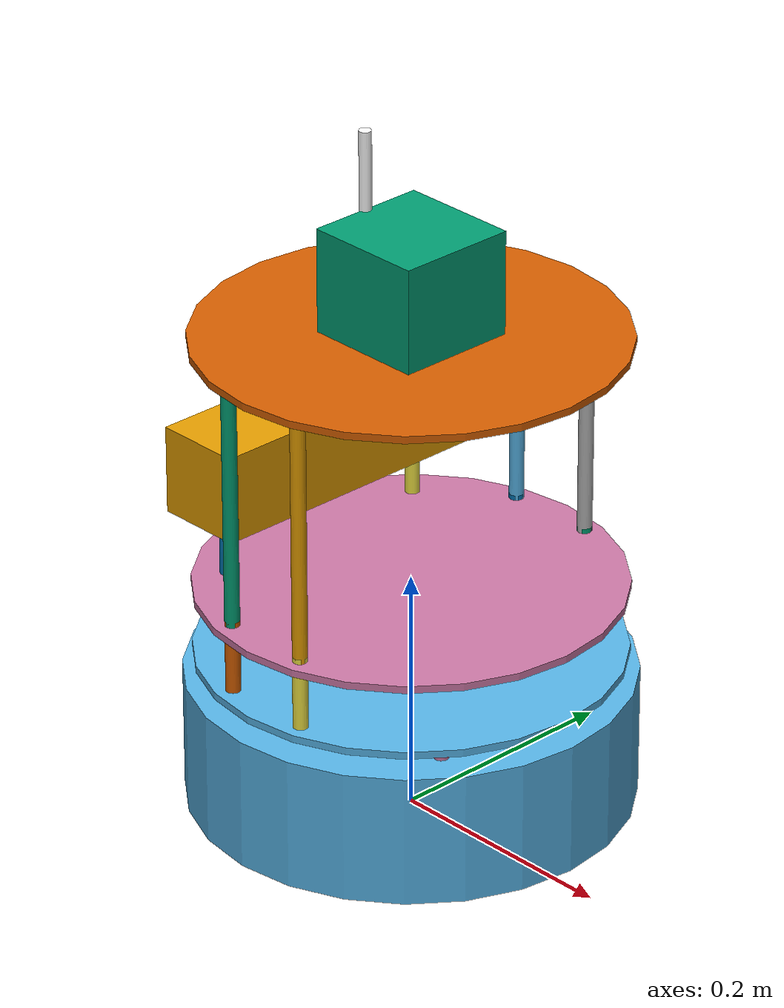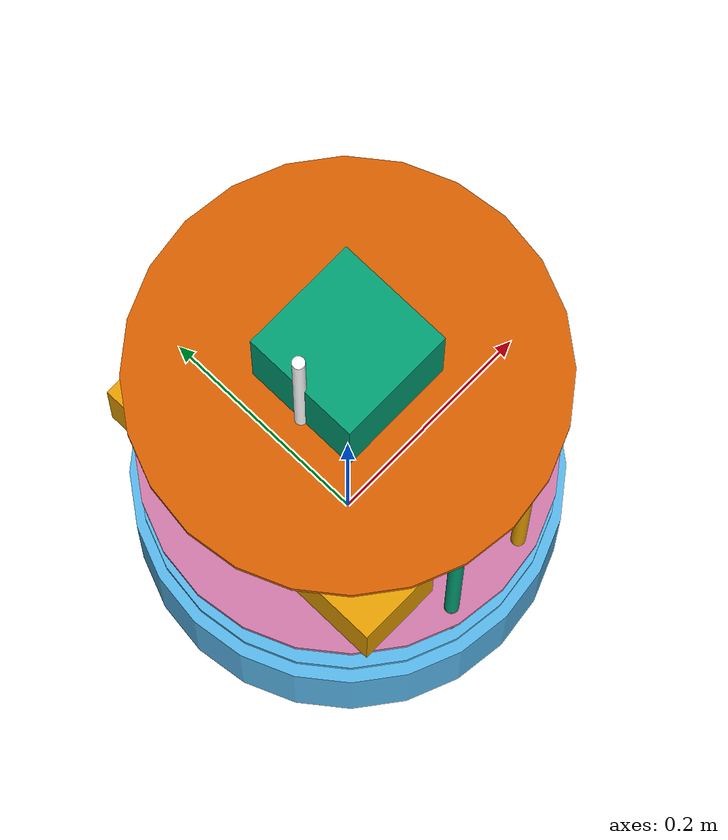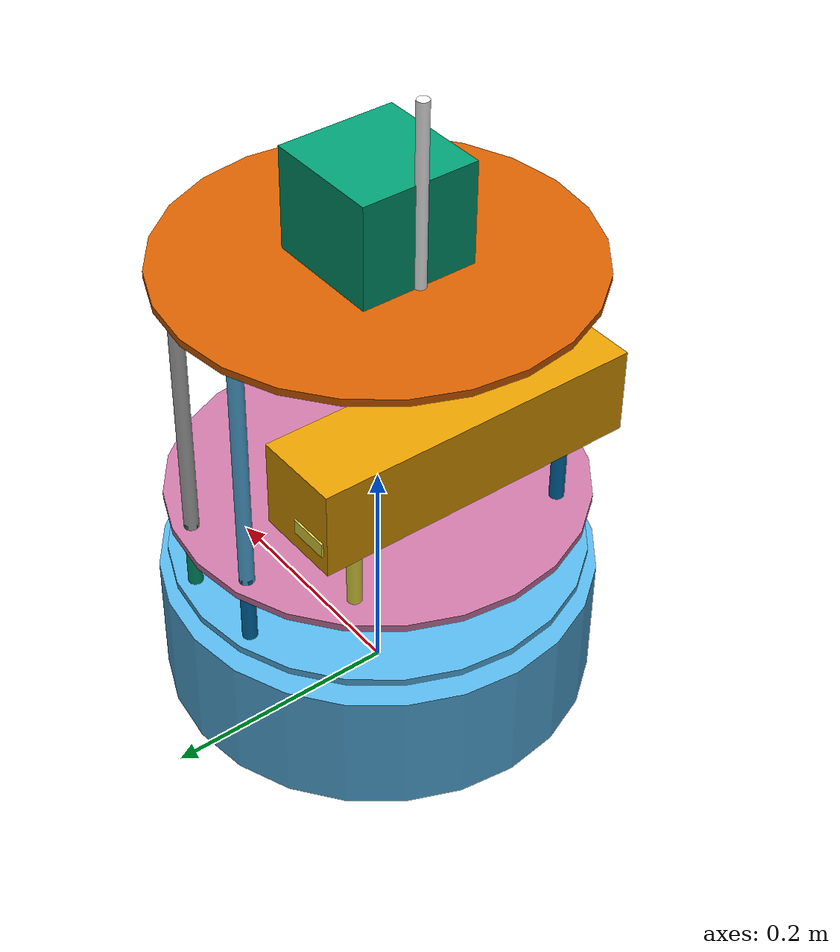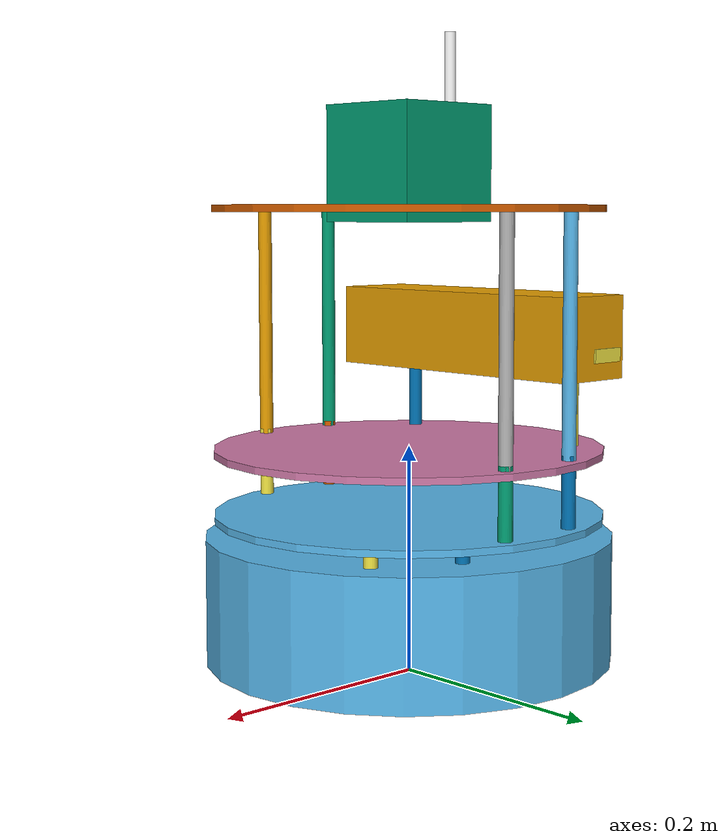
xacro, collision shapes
<?xml version="1.0" encoding="UTF-8"?>
<!-- |    This document was autogenerated by xacro from xacro from /home/simulations/public_sim_ws/src/all/  | -->
<!-- |    turtlebot/turtlebot_description/robots/kobuki_hexagons_asus_xtion_pro.urdf.xacro | -->
<!-- |    EDITING THIS FILE BY HAND IS NOT RECOMMENDED                                 | -->
<!--
    - Base      : kobuki
    - Stacks    : hexagons
    - 3d Sensor : kinect
-->

<robot xmlns:xacro="http://ros.org/wiki/xacro" name="turtlebot">
<xacro:arg name="diff_drive_publishTf" default="true" />
<xacro:arg name="diff_drive_publishOdomTF" default="true" />
<xacro:arg name="pkg_containing_meshes" default="kobuki_description" />

  <!-- General -->
  <!--
    These properties must be observed by any machine
    that wants to be defined as a turtlebot. Refer
    to the REP for more details.

    http://www.ros.org/reps/rep-0119.html
   -->
  <!-- Kobuki -->
  <!-- Xacro properties -->
  <!-- Xacro macros -->
  <!-- Pole macros -->
  <!-- Microsoft Kinect / ASUS Xtion PRO Live for simulation -->
  <!--
    These properties must be observed by any machine
    that wants to be defined as a turtlebot. Refer
    to the REP for more details.

    http://www.ros.org/reps/rep-0119.html
   -->
   <link name="base_footprint" />
   <joint name="base_joint" type="fixed">
      <origin rpy="0 0 0" xyz="0 0 0.0102" />
      <parent link="base_footprint" />
      <child link="base_link" />
   </joint>
   <link name="base_link">
      <visual>
         <geometry>
            <!-- new mesh -->
            <mesh filename="package://$(arg pkg_containing_meshes)/meshes/main_body.dae" />
         </geometry>
         <origin rpy="0 0 0" xyz="0.001 0 0.05199" />
      </visual>
      <collision>
         <geometry>
            <cylinder length="0.10938" radius="0.178" />
         </geometry>
         <origin rpy="0 0 0" xyz="0.0 0 0.05949" />
      </collision>
      <inertial>
         <!-- COM experimentally determined -->
         <origin xyz="0.01 0 0" />
         <mass value="2.4" />
      <!-- 2.4/2.6 kg for small/big battery pack -->
         <inertia ixx="0.019995" ixy="0.0" ixz="0.0" iyy="0.019995" iyz="0.0" izz="0.03675" />
      </inertial>
   </link>
   <joint name="wheel_left_joint" type="continuous">
      <parent link="base_link" />
      <child link="wheel_left_link" />
      <origin rpy="-1.57079632679 0 0" xyz="0.00 0.115 0.0250" />
      <axis xyz="0 0 1" />
   </joint>
   <link name="wheel_left_link">
      <visual>
         <geometry>
            <mesh filename="package://$(arg pkg_containing_meshes)/meshes/wheel.dae" />
         </geometry>
         <origin rpy="0 0 0" xyz="0 0 0" />
      </visual>
      <collision>
         <geometry>
            <cylinder length="0.0206" radius="0.0350" />
         </geometry>
         <origin rpy="0 0 0" xyz="0 0 0" />
      </collision>
      <inertial>
         <mass value="0.01" />
         <origin xyz="0 0 0" />
         <inertia ixx="0.001" ixy="0.0" ixz="0.0" iyy="0.001" iyz="0.0" izz="0.001" />
      </inertial>
   </link>
   <joint name="wheel_right_joint" type="continuous">
      <parent link="base_link" />
      <child link="wheel_right_link" />
      <origin rpy="-1.57079632679 0 0" xyz="0.00 -0.115 0.0250" />
      <axis xyz="0 0 1" />
   </joint>
   <link name="wheel_right_link">
      <visual>
         <geometry>
            <mesh filename="package://$(arg pkg_containing_meshes)/meshes/wheel.dae" />
         </geometry>
         <origin rpy="0 0 0" xyz="0 0 0" />
      </visual>
      <collision>
         <geometry>
            <cylinder length="0.0206" radius="0.0350" />
         </geometry>
         <origin rpy="0 0 0" xyz="0 0 0" />
      </collision>
      <inertial>
         <mass value="0.01" />
         <origin xyz="0 0 0" />
         <inertia ixx="0.001" ixy="0.0" ixz="0.0" iyy="0.001" iyz="0.0" izz="0.001" />
      </inertial>
   </link>
   <joint name="caster_front_joint" type="fixed">
      <parent link="base_link" />
      <child link="caster_front_link" />
      <origin rpy="-1.57079632679 0 0" xyz="0.115 0.0 0.007" />
   </joint>
   <link name="caster_front_link">
      <collision>
         <geometry>
            <cylinder length="0.0176" radius="0.017" />
         </geometry>
         <origin rpy="0 0 0" xyz="0 0 0" />
      </collision>
      <inertial>
         <mass value="0.01" />
         <origin xyz="0 0 0" />
         <inertia ixx="0.001" ixy="0.0" ixz="0.0" iyy="0.001" iyz="0.0" izz="0.001" />
      </inertial>
   </link>
   <joint name="caster_back_joint" type="fixed">
      <parent link="base_link" />
      <child link="caster_back_link" />
      <origin rpy="-1.57079632679 0 0" xyz="-0.135 0.0 0.009" />
   </joint>
   <link name="caster_back_link">
      <collision>
         <geometry>
            <cylinder length="0.0176" radius="0.017" />
         </geometry>
         <origin rpy="0 0 0" xyz="0 0 0" />
      </collision>
      <inertial>
         <mass value="0.01" />
         <origin xyz="0 0 0" />
         <inertia ixx="0.001" ixy="0.0" ixz="0.0" iyy="0.001" iyz="0.0" izz="0.001" />
      </inertial>
   </link>
   <!-- Kobuki's sensors -->
   <joint name="gyro_joint" type="fixed">
      <axis xyz="0 1 0" />
      <origin rpy="0 0 0" xyz="0.056 0.062 0.0202" />
      <parent link="base_link" />
      <child link="gyro_link" />
   </joint>
   <link name="gyro_link">
      <inertial>
         <mass value="0.001" />
         <origin rpy="0 0 0" xyz="0 0 0" />
         <inertia ixx="0.0001" ixy="0" ixz="0" iyy="0.000001" iyz="0" izz="0.0001" />
      </inertial>
   </link>
   <joint name="cliff_sensor_left_joint" type="fixed">
      <origin rpy="0 1.57079632679 0" xyz="0.08734 0.13601 0.0214" />
      <parent link="base_link" />
      <child link="cliff_sensor_left_link" />
   </joint>
   <link name="cliff_sensor_left_link">
      <inertial>
         <mass value="0.0001" />
         <origin xyz="0 0 0" />
         <inertia ixx="0.0001" ixy="0.0" ixz="0.0" iyy="0.0001" iyz="0.0" izz="0.0001" />
      </inertial>
   </link>
   <joint name="cliff_sensor_right_joint" type="fixed">
      <origin rpy="0 1.57079632679 0" xyz="0.085 -0.13601 0.0214" />
      <parent link="base_link" />
      <child link="cliff_sensor_right_link" />
   </joint>
   <link name="cliff_sensor_right_link">
      <inertial>
         <mass value="0.0001" />
         <origin xyz="0 0 0" />
         <inertia ixx="0.0001" ixy="0.0" ixz="0.0" iyy="0.0001" iyz="0.0" izz="0.0001" />
      </inertial>
   </link>
   <joint name="cliff_sensor_front_joint" type="fixed">
      <origin rpy="0 1.57079632679 0" xyz="0.156 0.00 0.0214" />
      <parent link="base_link" />
      <child link="cliff_sensor_front_link" />
   </joint>
   <link name="cliff_sensor_front_link">
      <inertial>
         <mass value="0.0001" />
         <origin xyz="0 0 0" />
         <inertia ixx="0.0001" ixy="0.0" ixz="0.0" iyy="0.0001" iyz="0.0" izz="0.0001" />
      </inertial>
   </link>
   <joint name="laser_sensor_joint" type="fixed">
      <origin rpy="0 0 0" xyz="0.0 0.0 0.435" />
      <parent link="base_link" />
      <child link="laser_sensor_link" />
   </joint>
   <link name="laser_sensor_link">
      <inertial>
         <mass value="1e-5" />
         <origin rpy="0 0 0" xyz="0 0 0" />
         <inertia ixx="1e-6" ixy="0" ixz="0" iyy="1e-6" iyz="0" izz="1e-6" />
      </inertial>
      <collision>
         <origin rpy="0 0 0" xyz="0 0 0" />
         <geometry>
            <box size="0.1 0.1 0.1" />
         </geometry>
      </collision>
      <visual>
         <origin rpy="0 0 0" xyz="0 0 0" />
         <geometry>
            <mesh filename="package://$(arg pkg_containing_meshes)/meshes/hokuyo.dae" />
         </geometry>
      </visual>
   </link>
   <gazebo reference="wheel_left_link">
      <mu1>1.0</mu1>
      <mu2>1.0</mu2>
      <kp>1000000.0</kp>
      <kd>100.0</kd>
      <minDepth>0.001</minDepth>
      <maxVel>1.0</maxVel>
   </gazebo>
   <gazebo reference="wheel_right_link">
      <mu1>1.0</mu1>
      <mu2>1.0</mu2>
      <kp>1000000.0</kp>
      <kd>100.0</kd>
      <minDepth>0.001</minDepth>
      <maxVel>1.0</maxVel>
   </gazebo>
   <gazebo reference="caster_front_link">
      <mu1>0.0</mu1>
      <mu2>0.0</mu2>
      <kp>1000000.0</kp>
      <kd>100.0</kd>
      <minDepth>0.001</minDepth>
      <maxVel>1.0</maxVel>
   </gazebo>
   <gazebo reference="caster_back_link">
      <mu1>0.0</mu1>
      <mu2>0.0</mu2>
      <kp>1000000.0</kp>
      <kd>100.0</kd>
      <minDepth>0.001</minDepth>
      <maxVel>1.0</maxVel>
   </gazebo>
   <gazebo reference="base_link">
      <mu1>0.3</mu1>
      <mu2>0.3</mu2>
      <sensor name="bumpers" type="contact">
         <always_on>1</always_on>
         <update_rate>50.0</update_rate>
         <visualize>true</visualize>
         <contact>
            <collision>base_footprint_collision_base_link</collision>
         </contact>
      </sensor>
   </gazebo>
   <gazebo reference="cliff_sensor_left_link">
      <sensor name="cliff_sensor_left" type="ray">
         <always_on>true</always_on>
         <update_rate>50</update_rate>
         <visualize>true</visualize>
         <ray>
            <scan>
               <horizontal>
                  <samples>50</samples>
                  <resolution>1.0</resolution>
                  <min_angle>-0.0436</min_angle>
                  <!-- -2.5 degree -->
                  <max_angle>0.0436</max_angle>
                  <!-- 2.5 degree -->
               </horizontal>
          <!--            Can't use vertical rays until this bug is resolved: -->
          <!--            https://bitbucket.org/osrf/gazebo/issue/509/vertical-sensor-doesnt-works -->
            </scan>
            <range>
               <min>0.01</min>
               <max>0.15</max>
               <resolution>1.0</resolution>
            </range>
         </ray>
      </sensor>
   </gazebo>
   <gazebo reference="cliff_sensor_right_link">
      <sensor name="cliff_sensor_right" type="ray">
         <always_on>true</always_on>
         <update_rate>50</update_rate>
         <visualize>true</visualize>
         <ray>
            <scan>
               <horizontal>
                  <samples>50</samples>
                  <resolution>1.0</resolution>
                  <min_angle>-0.0436</min_angle>
                  <!-- -2.5 degree -->
                  <max_angle>0.0436</max_angle>
                  <!-- 2.5 degree -->
               </horizontal>
          <!--            Can't use vertical rays until this bug is resolved: -->
          <!--            https://bitbucket.org/osrf/gazebo/issue/509/vertical-sensor-doesnt-works -->
            </scan>
            <range>
               <min>0.01</min>
               <max>0.15</max>
               <resolution>1.0</resolution>
            </range>
         </ray>
      </sensor>
   </gazebo>
   <gazebo reference="cliff_sensor_front_link">
      <sensor name="cliff_sensor_front" type="ray">
         <always_on>true</always_on>
         <update_rate>50</update_rate>
         <visualize>true</visualize>
         <ray>
            <scan>
               <horizontal>
                  <samples>50</samples>
                  <resolution>1.0</resolution>
                  <min_angle>-0.0436</min_angle>
                  <!-- -2.5 degree -->
                  <max_angle>0.0436</max_angle>
                  <!-- 2.5 degree -->
               </horizontal>
          <!--            Can't use vertical rays until this bug is resolved: -->
          <!--            https://bitbucket.org/osrf/gazebo/issue/509/vertical-sensor-doesnt-works -->
            </scan>
            <range>
               <min>0.01</min>
               <max>0.15</max>
               <resolution>1.0</resolution>
            </range>
         </ray>
      </sensor>
   </gazebo>

  <gazebo>
    <plugin name="imu_controller" filename="libhector_gazebo_ros_imu.so">
      <robotNamespace>/</robotNamespace>
      <updateRate>50.0</updateRate>
      <bodyName>base_link</bodyName>
      <topicName>/mobile_base/sensors/imu_data_raw</topicName>
      <accelDrift>0.005 0.005 0.005</accelDrift>
      <accelGaussianNoise>0.005 0.005 0.005</accelGaussianNoise>
      <rateDrift>0.005 0.005 0.005 </rateDrift>
      <rateGaussianNoise>0.005 0.005 0.005 </rateGaussianNoise>
      <headingDrift>0.005</headingDrift>
      <headingGaussianNoise>0.005</headingGaussianNoise>
      <headingDriftFrequency>0.0</headingDriftFrequency>
      <headingOffset>0.0</headingOffset>
      <rateDriftFrequency>0 0 0</rateDriftFrequency>
      <rateOffset>0 0 0</rateOffset>
      <accelDriftFrequency>0 0 0</accelDriftFrequency>
      <accelOffset>0 0 0</accelOffset>
    </plugin>
  </gazebo>

   <gazebo>
      <plugin filename="libgazebo_ros_diff_drive.so" name="differential_drive_controller">
         <alwaysOn>true</alwaysOn>
         <updateRate>50</updateRate>
         <publishTf>$(arg diff_drive_publishTf)</publishTf>
         <leftJoint>wheel_left_joint</leftJoint>
         <rightJoint>wheel_right_joint</rightJoint>
         <wheelSeparation>.230</wheelSeparation>
         <wheelDiameter>0.070</wheelDiameter>
         <torque>5.0</torque>
         <commandTopic>/cmd_vel</commandTopic>
         <!-- getting data form 'encoder' integration or getting data form gazebo 'world' -->
         <odometrySource>world</odometrySource> <!-- 'encoder' instead of 'world' is also possible -->
         <odometryTopic>/odom</odometryTopic> <!-- relative/name ,  /global/name  -->
         <odometryFrame>/odom</odometryFrame>
         <robotBaseFrame>/base_footprint</robotBaseFrame>
         <publishOdomTF>$(arg diff_drive_publishOdomTF)</publishOdomTF><!-- If both this and publishTf are true, send robotBaseFrame-to-odometryFrame transforms -->
         <publishWheelJointState>true</publishWheelJointState>
        <!-- Set to true to publish transforms for the wheel links, defaults to false -->
         <publishWheelTF>false</publishWheelTF>
         <wheelAcceleration> 0 </wheelAcceleration>
         <wheelTorque> 5.0 </wheelTorque>
         <legacyMode>true</legacyMode>
         <rosDebugLevel> na </rosDebugLevel>
      </plugin>
   </gazebo>
   <gazebo reference="laser_sensor_link">
      <sensor name="laser_sensor" type="ray">

         <pose>0 0 0 0 0 0</pose>
         <visualize>false</visualize>
         <update_rate>20</update_rate> <!-- hz, default: 40 -->
         <ray>
            <scan>
               <horizontal>
                  <samples>3</samples> <!-- default: 720 -->
                  <!-- If RangeResolution is 1, the number of simulated rays is equal to the number of returned range readings (no interpolation) -->
                  <resolution>1</resolution>
                  <min_angle>-1.570796</min_angle> <!-- -90 deg -->
                  <max_angle>1.570796</max_angle> <!-- 90 deg -->
               </horizontal>
            </scan>
            <range>
               <min>0.10</min>
               <max>5.0</max> <!-- 5 meters range -->
               <resolution>0.01</resolution>
            </range>
            <noise>
               <type>gaussian</type>
               <mean>0.0</mean>
               <stddev>0.01</stddev>
            </noise>
         </ray>
        <plugin filename="libgazebo_ros_laser.so" name="gazebo_ros_hokuyo_controller">
            <topicName>/kobuki/laser/scan</topicName>
            <frameName>laser_sensor_link</frameName>
         </plugin>
      </sensor>
   </gazebo>
   <joint name="pole_bottom_0_joint" type="fixed">
      <origin rpy="0 0 0" xyz="0.12 0.082    0.1028" />
      <parent link="base_link" />
      <child link="pole_bottom_0_link" />
   </joint>
   <link name="pole_bottom_0_link">
      <visual>
         <origin rpy="0 0 0" xyz="0 0 0" />
         <geometry>
            <mesh filename="package://$(arg pkg_containing_meshes)/meshes/stacks/hexagons/pole_bottom.dae" />
         </geometry>
      </visual>
      <collision>
         <origin rpy="0 0 0" xyz="0 0 0" />
         <geometry>
            <cylinder length="0.0492" radius="0.006" />
         </geometry>
      </collision>
      <inertial>
         <mass value="0.008" />
         <origin rpy="0 0 0" xyz="0 0 0" />
         <inertia ixx="0.000001686" ixy="0.0" ixz="0.0" iyy="0.000001686" iyz="0.0" izz="0.000000144" />
      </inertial>
   </link>
   <joint name="pole_bottom_1_joint" type="fixed">
      <origin rpy="0 0 0" xyz="0.055 0.12 0.1028" />
      <parent link="base_link" />
      <child link="pole_bottom_1_link" />
   </joint>
   <link name="pole_bottom_1_link">
      <visual>
         <origin rpy="0 0 0" xyz="0 0 0" />
         <geometry>
            <mesh filename="package://$(arg pkg_containing_meshes)/meshes/stacks/hexagons/pole_bottom.dae" />
         </geometry>
      </visual>
      <collision>
         <origin rpy="0 0 0" xyz="0 0 0" />
         <geometry>
            <cylinder length="0.0492" radius="0.006" />
         </geometry>
      </collision>
      <inertial>
         <mass value="0.008" />
         <origin rpy="0 0 0" xyz="0 0 0" />
         <inertia ixx="0.000001686" ixy="0.0" ixz="0.0" iyy="0.000001686" iyz="0.0" izz="0.000000144" />
      </inertial>
   </link>
   <joint name="pole_bottom_2_joint" type="fixed">
      <origin rpy="0 0 0" xyz="-0.055 0.12 0.1028" />
      <parent link="base_link" />
      <child link="pole_bottom_2_link" />
   </joint>
   <link name="pole_bottom_2_link">
      <visual>
         <origin rpy="0 0 0" xyz="0 0 0" />
         <geometry>
            <mesh filename="package://$(arg pkg_containing_meshes)/meshes/stacks/hexagons/pole_bottom.dae" />
         </geometry>
      </visual>
      <collision>
         <origin rpy="0 0 0" xyz="0 0 0" />
         <geometry>
            <cylinder length="0.0492" radius="0.006" />
         </geometry>
      </collision>
      <inertial>
         <mass value="0.008" />
         <origin rpy="0 0 0" xyz="0 0 0" />
         <inertia ixx="0.000001686" ixy="0.0" ixz="0.0" iyy="0.000001686" iyz="0.0" izz="0.000000144" />
      </inertial>
   </link>
   <joint name="pole_bottom_3_joint" type="fixed">
      <origin rpy="0 0 0" xyz="0.12 -0.082 0.1028" />
      <parent link="base_link" />
      <child link="pole_bottom_3_link" />
   </joint>
   <link name="pole_bottom_3_link">
      <visual>
         <origin rpy="0 0 0" xyz="0 0 0" />
         <geometry>
            <mesh filename="package://$(arg pkg_containing_meshes)/meshes/stacks/hexagons/pole_bottom.dae" />
         </geometry>
      </visual>
      <collision>
         <origin rpy="0 0 0" xyz="0 0 0" />
         <geometry>
            <cylinder length="0.0492" radius="0.006" />
         </geometry>
      </collision>
      <inertial>
         <mass value="0.008" />
         <origin rpy="0 0 0" xyz="0 0 0" />
         <inertia ixx="0.000001686" ixy="0.0" ixz="0.0" iyy="0.000001686" iyz="0.0" izz="0.000000144" />
      </inertial>
   </link>
   <joint name="pole_bottom_4_joint" type="fixed">
      <origin rpy="0 0 0" xyz="0.055 -0.12 0.1028" />
      <parent link="base_link" />
      <child link="pole_bottom_4_link" />
   </joint>
   <link name="pole_bottom_4_link">
      <visual>
         <origin rpy="0 0 0" xyz="0 0 0" />
         <geometry>
            <mesh filename="package://$(arg pkg_containing_meshes)/meshes/stacks/hexagons/pole_bottom.dae" />
         </geometry>
      </visual>
      <collision>
         <origin rpy="0 0 0" xyz="0 0 0" />
         <geometry>
            <cylinder length="0.0492" radius="0.006" />
         </geometry>
      </collision>
      <inertial>
         <mass value="0.008" />
         <origin rpy="0 0 0" xyz="0 0 0" />
         <inertia ixx="0.000001686" ixy="0.0" ixz="0.0" iyy="0.000001686" iyz="0.0" izz="0.000000144" />
      </inertial>
   </link>
   <joint name="pole_bottom_5_joint" type="fixed">
      <origin rpy="0 0 0" xyz="-0.055 -0.12 0.1028" />
      <parent link="base_link" />
      <child link="pole_bottom_5_link" />
   </joint>
   <link name="pole_bottom_5_link">
      <visual>
         <origin rpy="0 0 0" xyz="0 0 0" />
         <geometry>
            <mesh filename="package://$(arg pkg_containing_meshes)/meshes/stacks/hexagons/pole_bottom.dae" />
         </geometry>
      </visual>
      <collision>
         <origin rpy="0 0 0" xyz="0 0 0" />
         <geometry>
            <cylinder length="0.0492" radius="0.006" />
         </geometry>
      </collision>
      <inertial>
         <mass value="0.008" />
         <origin rpy="0 0 0" xyz="0 0 0" />
         <inertia ixx="0.000001686" ixy="0.0" ixz="0.0" iyy="0.000001686" iyz="0.0" izz="0.000000144" />
      </inertial>
   </link>
   <joint name="plate_bottom_joint" type="fixed">
      <origin rpy="0 0 0" xyz="0.02364 0.0 0.1306" />
      <parent link="base_link" />
      <child link="plate_bottom_link" />
   </joint>
   <link name="plate_bottom_link">
      <visual>
         <origin rpy="0 0 0" xyz="0 0 0" />
         <geometry>
            <mesh filename="package://$(arg pkg_containing_meshes)/meshes/stacks/hexagons/plate_bottom.dae" />
         </geometry>
      </visual>
      <collision>
         <origin rpy="0 0 0" xyz="-0.02364 0 0" />
         <geometry>
            <cylinder length="0.006" radius="0.170" />
         </geometry>
      </collision>
      <inertial>
         <mass value="0.520" />
         <origin xyz="0 0 0" />
         <inertia ixx="0.003328" ixy="0.0" ixz="0.0" iyy="0.003328" iyz="0.0" izz="0.006656" />
      </inertial>
   </link>
   <joint name="pole_middle_0_joint" type="fixed">
      <origin rpy="0 0 0" xyz="0.0381 0.1505 0.164" />
      <parent link="base_link" />
      <child link="pole_middle_0_link" />
   </joint>
   <link name="pole_middle_0_link">
      <visual>
         <origin rpy="0 3.14159265359 0" xyz="0 0 0" />
         <geometry>
            <mesh filename="package://$(arg pkg_containing_meshes)/meshes/stacks/hexagons/pole_middle.dae" />
         </geometry>
      </visual>
      <collision>
         <origin rpy="0 0 0" xyz="0 0 0" />
         <geometry>
            <cylinder length="0.0608" radius="0.006" />
         </geometry>
      </collision>
      <inertial>
         <mass value="0.012" />
         <origin xyz="0 0 0" />
         <inertia ixx="0.000003805" ixy="0.0" ixz="0.0" iyy="0.000003805" iyz="0.0" izz="0.000000216" />
      </inertial>
   </link>
   <joint name="pole_middle_1_joint" type="fixed">
      <origin rpy="0 0 0" xyz="0.0381 -0.1505 0.164" />
      <parent link="base_link" />
      <child link="pole_middle_1_link" />
   </joint>
   <link name="pole_middle_1_link">
      <visual>
         <origin rpy="0 3.14159265359 0" xyz="0 0 0" />
         <geometry>
            <mesh filename="package://$(arg pkg_containing_meshes)/meshes/stacks/hexagons/pole_middle.dae" />
         </geometry>
      </visual>
      <collision>
         <origin rpy="0 0 0" xyz="0 0 0" />
         <geometry>
            <cylinder length="0.0608" radius="0.006" />
         </geometry>
      </collision>
      <inertial>
         <mass value="0.012" />
         <origin xyz="0 0 0" />
         <inertia ixx="0.000003805" ixy="0.0" ixz="0.0" iyy="0.000003805" iyz="0.0" izz="0.000000216" />
      </inertial>
   </link>
   <joint name="pole_middle_2_joint" type="fixed">
      <origin rpy="0 0 0" xyz="-0.0381 0.1505 0.164" />
      <parent link="base_link" />
      <child link="pole_middle_2_link" />
   </joint>
   <link name="pole_middle_2_link">
      <visual>
         <origin rpy="0 3.14159265359 0" xyz="0 0 0" />
         <geometry>
            <mesh filename="package://$(arg pkg_containing_meshes)/meshes/stacks/hexagons/pole_middle.dae" />
         </geometry>
      </visual>
      <collision>
         <origin rpy="0 0 0" xyz="0 0 0" />
         <geometry>
            <cylinder length="0.0608" radius="0.006" />
         </geometry>
      </collision>
      <inertial>
         <mass value="0.012" />
         <origin xyz="0 0 0" />
         <inertia ixx="0.000003805" ixy="0.0" ixz="0.0" iyy="0.000003805" iyz="0.0" izz="0.000000216" />
      </inertial>
   </link>
   <joint name="pole_middle_3_joint" type="fixed">
      <origin rpy="0 0 0" xyz="-0.0381 -0.1505 0.164" />
      <parent link="base_link" />
      <child link="pole_middle_3_link" />
   </joint>
   <link name="pole_middle_3_link">
      <visual>
         <origin rpy="0 3.14159265359 0" xyz="0 0 0" />
         <geometry>
            <mesh filename="package://$(arg pkg_containing_meshes)/meshes/stacks/hexagons/pole_middle.dae" />
         </geometry>
      </visual>
      <collision>
         <origin rpy="0 0 0" xyz="0 0 0" />
         <geometry>
            <cylinder length="0.0608" radius="0.006" />
         </geometry>
      </collision>
      <inertial>
         <mass value="0.012" />
         <origin xyz="0 0 0" />
         <inertia ixx="0.000003805" ixy="0.0" ixz="0.0" iyy="0.000003805" iyz="0.0" izz="0.000000216" />
      </inertial>
   </link>
   <joint name="plate_middle_joint" type="fixed">
      <origin rpy="0 0 0" xyz="-0.01364 0.0 0.1874" />
      <parent link="base_link" />
      <child link="plate_middle_link" />
   </joint>
   <link name="plate_middle_link">
      <visual>
         <origin rpy="0 0 0" xyz="0 0 0" />
         <geometry>
            <mesh filename="package://$(arg pkg_containing_meshes)/meshes/stacks/hexagons/plate_middle.dae" />
         </geometry>
      </visual>
      <collision>
         <origin rpy="0 0 0" xyz="0.01364 0.0 0.0" />
         <geometry>
            <cylinder length="0.006" radius="0.170" />
         </geometry>
      </collision>
      <inertial>
         <mass value="0.520" />
         <origin xyz="0 0 0" />
         <inertia ixx="0.003328" ixy="0.0" ixz="0.0" iyy="0.003328" iyz="0.0" izz="0.006656" />
      </inertial>
   </link>
   <joint name="pole_top_0_joint" type="fixed">
      <origin rpy="0 0 0" xyz="0.0381 0.1505 0.292" />
      <parent link="base_link" />
      <child link="pole_top_0_link" />
   </joint>
   <link name="pole_top_0_link">
      <visual>
         <origin rpy="0 0 0" xyz=" 0 0 0" />
         <geometry>
            <mesh filename="package://$(arg pkg_containing_meshes)/meshes/stacks/hexagons/pole_top.dae" />
         </geometry>
      </visual>
      <collision>
         <origin rpy="0 0 0" xyz="0 0 0" />
         <geometry>
            <cylinder length="0.2032" radius="0.006" />
         </geometry>
      </collision>
      <inertial>
         <mass value="0.060" />
         <origin xyz="0 0 0" />
         <inertia ixx="0.000206991" ixy="0.0" ixz="0.0" iyy="0.000206991" iyz="0.0" izz="0.000001080" />
      </inertial>
   </link>
   <joint name="pole_top_1_joint" type="fixed">
      <origin rpy="0 0 0" xyz="0.0381 -0.1505 0.292" />
      <parent link="base_link" />
      <child link="pole_top_1_link" />
   </joint>
   <link name="pole_top_1_link">
      <visual>
         <origin rpy="0 0 0" xyz=" 0 0 0" />
         <geometry>
            <mesh filename="package://$(arg pkg_containing_meshes)/meshes/stacks/hexagons/pole_top.dae" />
         </geometry>
      </visual>
      <collision>
         <origin rpy="0 0 0" xyz="0 0 0" />
         <geometry>
            <cylinder length="0.2032" radius="0.006" />
         </geometry>
      </collision>
      <inertial>
         <mass value="0.060" />
         <origin xyz="0 0 0" />
         <inertia ixx="0.000206991" ixy="0.0" ixz="0.0" iyy="0.000206991" iyz="0.0" izz="0.000001080" />
      </inertial>
   </link>
   <joint name="pole_top_2_joint" type="fixed">
      <origin rpy="0 0 0" xyz="-0.0381 0.1505 0.292" />
      <parent link="base_link" />
      <child link="pole_top_2_link" />
   </joint>
   <link name="pole_top_2_link">
      <visual>
         <origin rpy="0 0 0" xyz=" 0 0 0" />
         <geometry>
            <mesh filename="package://$(arg pkg_containing_meshes)/meshes/stacks/hexagons/pole_top.dae" />
         </geometry>
      </visual>
      <collision>
         <origin rpy="0 0 0" xyz="0 0 0" />
         <geometry>
            <cylinder length="0.2032" radius="0.006" />
         </geometry>
      </collision>
      <inertial>
         <mass value="0.060" />
         <origin xyz="0 0 0" />
         <inertia ixx="0.000206991" ixy="0.0" ixz="0.0" iyy="0.000206991" iyz="0.0" izz="0.000001080" />
      </inertial>
   </link>
   <joint name="pole_top_3_joint" type="fixed">
      <origin rpy="0 0 0" xyz="-0.0381 -0.1505 0.292" />
      <parent link="base_link" />
      <child link="pole_top_3_link" />
   </joint>
   <link name="pole_top_3_link">
      <visual>
         <origin rpy="0 0 0" xyz=" 0 0 0" />
         <geometry>
            <mesh filename="package://$(arg pkg_containing_meshes)/meshes/stacks/hexagons/pole_top.dae" />
         </geometry>
      </visual>
      <collision>
         <origin rpy="0 0 0" xyz="0 0 0" />
         <geometry>
            <cylinder length="0.2032" radius="0.006" />
         </geometry>
      </collision>
      <inertial>
         <mass value="0.060" />
         <origin xyz="0 0 0" />
         <inertia ixx="0.000206991" ixy="0.0" ixz="0.0" iyy="0.000206991" iyz="0.0" izz="0.000001080" />
      </inertial>
   </link>
   <joint name="pole_kinect_0_joint" type="fixed">
      <origin rpy="0 0 0" xyz="-0.1024 0.098 0.2372" />
      <parent link="base_link" />
      <child link="pole_kinect_0_link" />
   </joint>
   <link name="pole_kinect_0_link">
      <visual>
         <origin rpy="0 0 0" xyz="0 0 -0.01" />
         <geometry>
            <mesh filename="package://$(arg pkg_containing_meshes)/meshes/sensors/sensor_pole.dae" />
         </geometry>
      </visual>
      <collision>
         <origin rpy="0 0 0" xyz="0 0 0" />
         <geometry>
            <cylinder length="0.0936" radius="0.006" />
         </geometry>
      </collision>
      <inertial>
         <mass value="0.020" />
         <origin xyz="0 0 0" />
         <inertia ixx="0.000014782" ixy="0.0" ixz="0.0" iyy="0.000014782" iyz="0.0" izz="0.000000360" />
      </inertial>
   </link>
   <joint name="pole_kinect_1_joint" type="fixed">
      <origin rpy="0 0 0" xyz="-0.1024 -0.098 0.2372" />
      <parent link="base_link" />
      <child link="pole_kinect_1_link" />
   </joint>
   <link name="pole_kinect_1_link">
      <visual>
         <origin rpy="0 0 0" xyz="0 0 -0.01" />
         <geometry>
            <mesh filename="package://$(arg pkg_containing_meshes)/meshes/sensors/sensor_pole.dae" />
         </geometry>
      </visual>
      <collision>
         <origin rpy="0 0 0" xyz="0 0 0" />
         <geometry>
            <cylinder length="0.0936" radius="0.006" />
         </geometry>
      </collision>
      <inertial>
         <mass value="0.020" />
         <origin xyz="0 0 0" />
         <inertia ixx="0.000014782" ixy="0.0" ixz="0.0" iyy="0.000014782" iyz="0.0" izz="0.000000360" />
      </inertial>
   </link>
   <joint name="plate_top_joint" type="fixed">
      <origin rpy="0 0 0" xyz="-0.01364 0.0  0.3966" />
      <parent link="base_link" />
      <child link="plate_top_link" />
   </joint>
   <link name="plate_top_link">
      <visual>
         <origin rpy="0 0 0" xyz="0 0 0" />
         <geometry>
            <mesh filename="package://$(arg pkg_containing_meshes)/meshes/stacks/hexagons/plate_top.dae" />
         </geometry>
      </visual>
      <collision>
         <origin rpy="0 0 0" xyz="0.01364 0 0" />
         <geometry>
            <cylinder length="0.006" radius="0.170" />
         </geometry>
      </collision>
      <inertial>
         <mass value="0.520" />
         <origin xyz="0 0 0" />
         <inertia ixx="0.003328" ixy="0.0" ixz="0.0" iyy="0.003328" iyz="0.0" izz="0.006656" />
      </inertial>
   </link>
   <joint name="camera_rgb_joint" type="fixed">
      <origin rpy="0 0 0" xyz="-0.087 0.0205 0.287" />
      <parent link="base_link" />
      <child link="camera_rgb_frame" />
   </joint>
   <link name="camera_rgb_frame" />
   <joint name="camera_rgb_optical_joint" type="fixed">
      <origin rpy="-1.57079632679 0 -1.57079632679" xyz="0 0    0" />
      <parent link="camera_rgb_frame" />
      <child link="camera_rgb_optical_frame" />
   </joint>
   <link name="camera_rgb_optical_frame" />
   <joint name="camera_joint" type="fixed">
      <origin rpy="0 0 0" xyz="0 -0.022 0" />
      <parent link="camera_rgb_frame" />
      <child link="camera_link" />
   </joint>
   <link name="camera_link">
      <visual>
         <origin rpy="0 0 0" xyz="-0.015 0.0035 0.004" />
         <geometry>
            <mesh filename="package://$(arg pkg_containing_meshes)/meshes/sensors/xtion_pro_camera.dae" />
         </geometry>
      </visual>
      <collision>
         <origin rpy="0 0 0" xyz="0.0 0.0 0.0" />
         <geometry>
            <box size="0.0730 0.2760 0.0720" />
         </geometry>
      </collision>
      <inertial>
         <mass value="0.170" />
         <origin xyz="0 0 0" />
         <inertia ixx="0.001152600" ixy="0.0" ixz="0.0" iyy="0.000148934" iyz="0.0" izz="0.001154654" />
      </inertial>
   </link>
   <joint name="camera_depth_joint" type="fixed">
      <origin rpy="0 0 0" xyz="0 0.027 0" />
      <parent link="camera_rgb_frame" />
      <child link="camera_depth_frame" />
   </joint>
   <link name="camera_depth_frame" />
   <joint name="camera_depth_optical_joint" type="fixed">
      <origin rpy="-1.57079632679 0 -1.57079632679" xyz="0 0 0" />
      <parent link="camera_depth_frame" />
      <child link="camera_depth_optical_frame" />
   </joint>
   <link name="camera_depth_optical_frame" />
   <gazebo reference="camera_link">
      <sensor name="camera" type="depth">
         <always_on>true</always_on>
         <update_rate>20.0</update_rate>
         <camera>
            <horizontal_fov>1.0471975512</horizontal_fov>
            <image>
               <format>R8G8B8</format>
               <width>640</width>
               <height>480</height>
            </image>
            <clip>
               <near>0.05</near>
               <far>8.0</far>
            </clip>
         </camera>
         <plugin filename="libgazebo_ros_openni_kinect.so" name="kinect_camera_controller">
            <cameraName>camera</cameraName>
            <alwaysOn>true</alwaysOn>
            <updateRate>10</updateRate>
            <imageTopicName>rgb/image_raw</imageTopicName>
            <depthImageTopicName>depth/image_raw</depthImageTopicName>
            <pointCloudTopicName>depth/points</pointCloudTopicName>
            <cameraInfoTopicName>rgb/camera_info</cameraInfoTopicName>
            <depthImageCameraInfoTopicName>depth/camera_info</depthImageCameraInfoTopicName>
            <frameName>camera_depth_optical_frame</frameName>
            <baseline>0.1</baseline>
            <distortion_k1>0.0</distortion_k1>
            <distortion_k2>0.0</distortion_k2>
            <distortion_k3>0.0</distortion_k3>
            <distortion_t1>0.0</distortion_t1>
            <distortion_t2>0.0</distortion_t2>
            <pointCloudCutoff>0.4</pointCloudCutoff>
         </plugin>
      </sensor>
   </gazebo>
   <!-- Asus mount -->
   <joint name="mount_asus_xtion_pro_joint" type="fixed">
      <origin rpy="0 0 0" xyz="-0.1024    0.0 0.272" />
      <parent link="base_link" />
      <child link="mount_asus_xtion_pro_link" />
   </joint>
   <link name="mount_asus_xtion_pro_link">
      <visual>
         <origin rpy="-1.57079632679 0 0" xyz="0 0 0" />
         <geometry>
            <mesh filename="package://$(arg pkg_containing_meshes)/meshes/sensors/xtion_pro_stack.dae" />
         </geometry>
      </visual>
      <collision>
         <origin rpy="0 0 0" xyz="0.0 0.0 0.0" />
         <geometry>
            <box size="0.0330 0.2760 0.0120" />
         </geometry>
      </collision>
      <inertial>
         <mass value="0.170" />
         <origin xyz="0 0 0" />
         <inertia ixx="0.001152600" ixy="0.0" ixz="0.0" iyy="0.000148934" iyz="0.0" izz="0.001154654" />
      </inertial>
   </link>
     <!-- ANTENNA GPS -->
  <joint name="gps_joint" type="fixed">
    <axis xyz="0 1 0"/>
    <origin rpy="0 0 0" xyz="-0.05 0 0.475"/>
    <parent link="base_link"/>
    <child link="gps_base_link"/>
  </joint>
  <link name="gps_base_link">
    <inertial>
      <mass value="0.001"/>
      <origin rpy="0 0 0" xyz="0 0 0"/>
      <inertia ixx="0.0001" ixy="0" ixz="0" iyy="0.000001" iyz="0" izz="0.0001"/>
    </inertial>
    <visual>
      <origin rpy="0 0 0" xyz="0 0 0"/>
      <material name="gps_color">
        <color rgba="1 1 1 1"/>
      </material>
      <geometry>
        <cylinder length="0.15" radius="0.005" />
      </geometry>
    </visual>
    <collision>
      <origin rpy="0 0 0" xyz="0 0 0"/>
      <geometry>
        <cylinder length="0.15" radius="0.005" />
      </geometry>
    </collision>
  </link>
  <gazebo reference="gps_base_link">
    <material>Gazebo/White</material>
    <gravity>true</gravity>
  </gazebo>
  <gazebo>
    <plugin filename="libhector_gazebo_ros_gps.so" name="gps_controller">
      <alwaysOn>1</alwaysOn>
      <updateRate>30</updateRate>
      <bodyName>base_link</bodyName>
      <!-- in a real robot must be the link of the gps device, not the base_link or base_footprint -->
      <frameId>base_link</frameId>
      <topicName>navsat/fix</topicName>
      <velocityTopicName>navsat/vel</velocityTopicName>
      <!-- The reference point that corresponds to the origin of the gazebo frame -->
      <referenceLatitude>49.9</referenceLatitude>
      <referenceLongitude>8.9</referenceLongitude>
      <referenceHeading>0</referenceHeading>
      <referenceAltitude>0</referenceAltitude>
      <!-- To set heading in ENU orientation (degrees) -->
      <!-- set to 90: IMU reads 0 facing magnetic north, not east -->
      <!-- If set to 90 there is no need to set yaw_offset on navsat_transform_node -->
      <referenceHeading>0</referenceHeading>
      <offset>0 0 0</offset>
      <drift>0.0001 0.0001 0.0001</drift>
      <driftFrequency>0.0 0.0 0.0</driftFrequency>
      <gaussianNoise>0.00000000000000000001 0.00000000000000000001 0.00000000000000000001</gaussianNoise> <!-- this is std. dev. not var.-->
      <velocityDrift>0.00001 0.00001 0.00001</velocityDrift>
      <velocityDriftFrequency>0 0 0</velocityDriftFrequency>
      <velocityGaussianNoise>0.00001 0.00001 0.00001</velocityGaussianNoise>
      <velocityOffset>0 0 0</velocityOffset>
    </plugin>
  </gazebo>
</robot>
